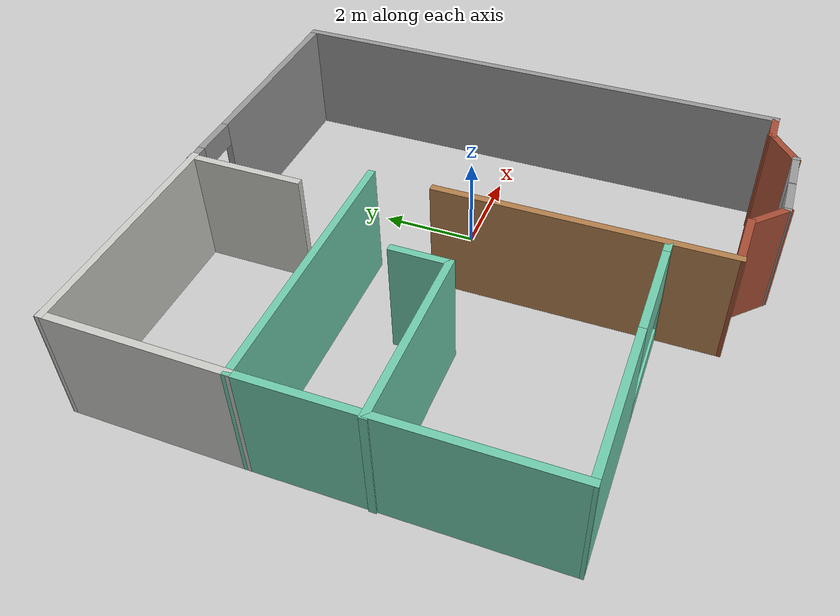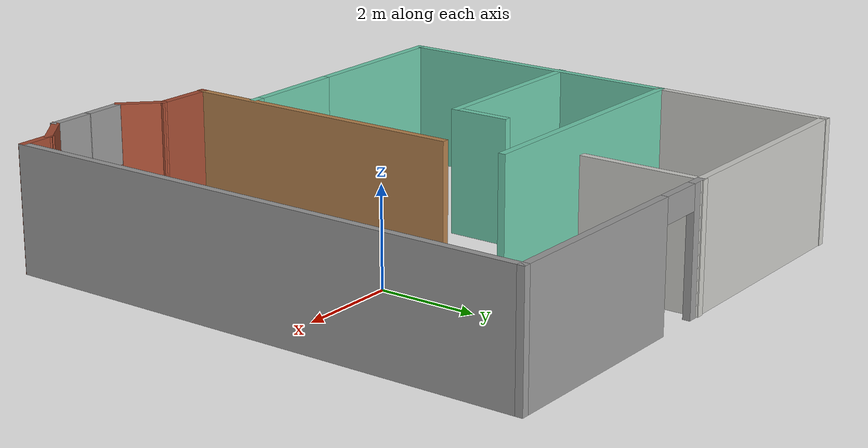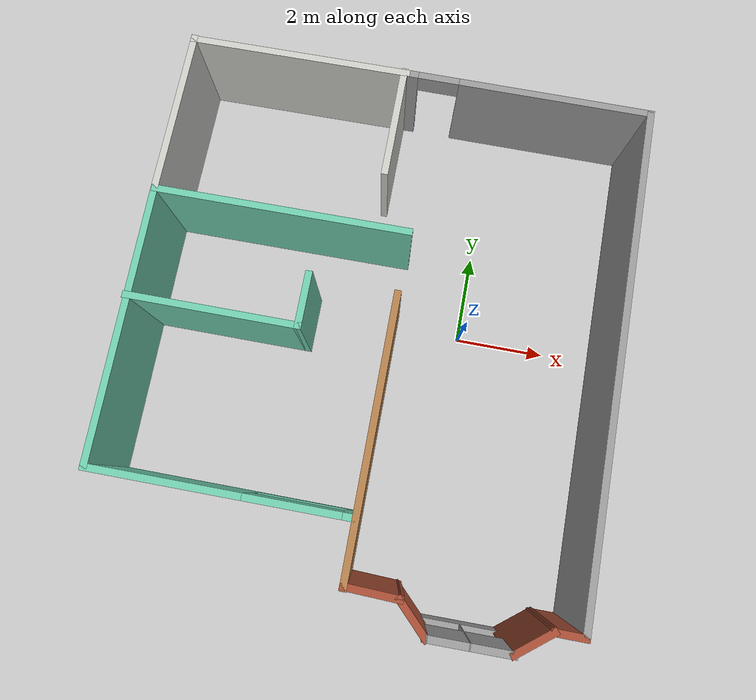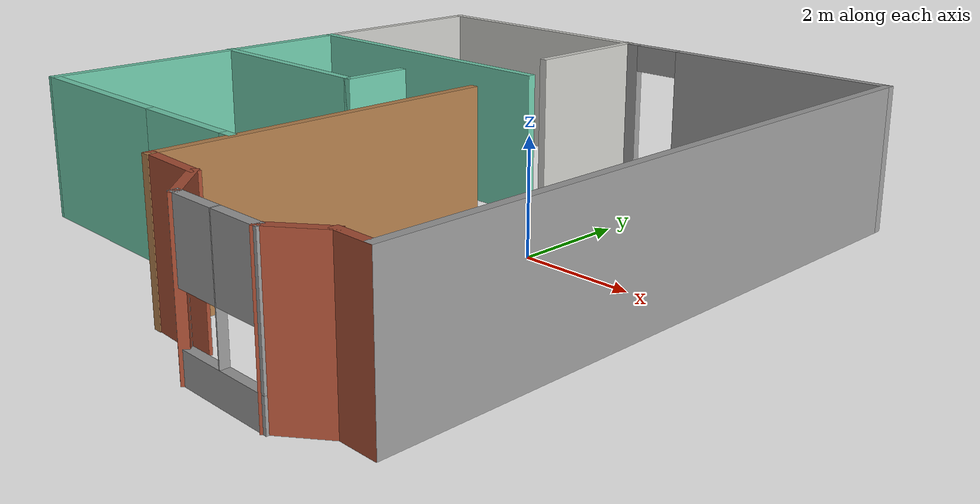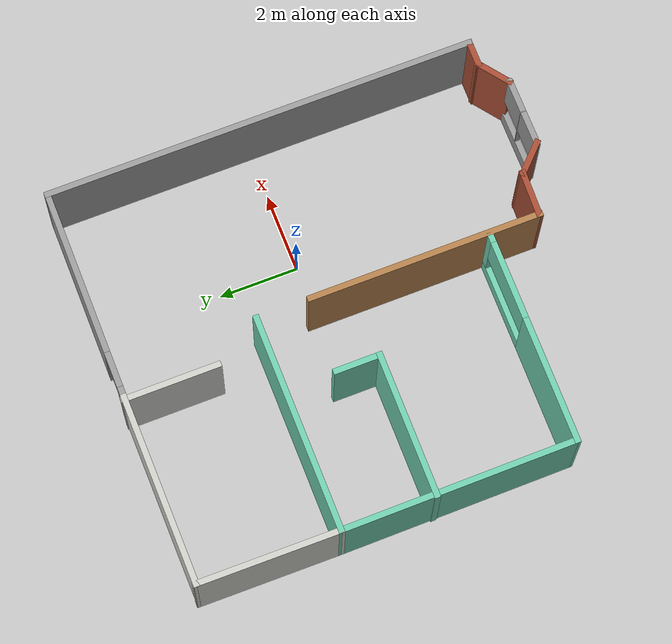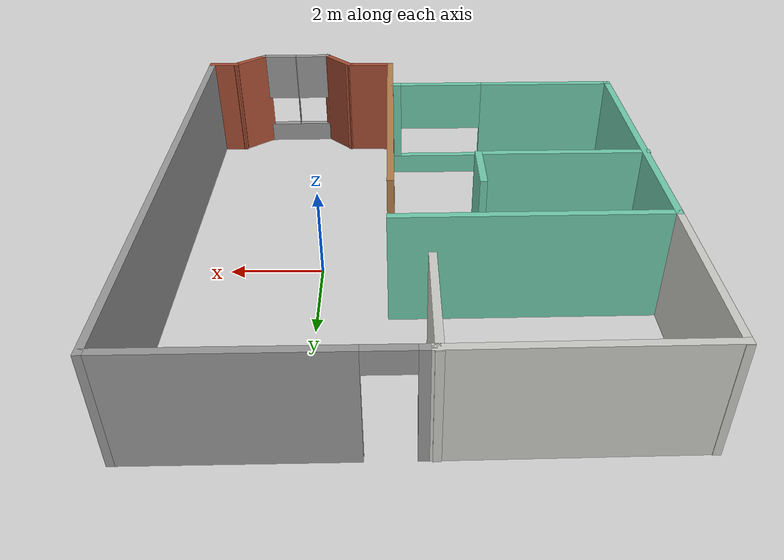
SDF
<?xml version='1.0'?>
<sdf version='1.6'>
  <model name='myWorld'>
    <pose frame=''>-1.93076 -0.557232 0 0 -0 0</pose>
    <link name='Wall_1'>
      <collision name='Wall_1_Collision'>
        <geometry>
          <box>
            <size>6 0.15 2.5</size>
          </box>
        </geometry>
        <pose frame=''>0 0 1.25 0 -0 0</pose>
      </collision>
      <visual name='Wall_1_Visual'>
        <pose frame=''>0 0 1.25 0 -0 0</pose>
        <geometry>
          <box>
            <size>6 0.15 2.5</size>
          </box>
        </geometry>
        <material>
          <script>
            <uri>file://media/materials/scripts/gazebo.material</uri>
            <name>Gazebo/Wood</name>
          </script>
          <ambient>1 1 1 1</ambient>
        </material>
        <meta>
          <layer>0</layer>
        </meta>
      </visual>
      <pose frame=''>0.408173 -2.14572 0 0 0 -1.5708</pose>
    </link>
    <link name='Wall_18'>
      <collision name='Wall_18_Collision'>
        <geometry>
          <box>
            <size>10.9886 0.15 2.5</size>
          </box>
        </geometry>
        <pose frame=''>0 0 1.25 0 -0 0</pose>
      </collision>
      <visual name='Wall_18_Visual'>
        <pose frame=''>0 0 1.25 0 -0 0</pose>
        <geometry>
          <box>
            <size>10.9886 0.15 2.5</size>
          </box>
        </geometry>
        <material>
          <script>
            <uri>file://media/materials/scripts/gazebo.material</uri>
            <name>Gazebo/Grey</name>
          </script>
          <ambient>1 1 1 1</ambient>
        </material>
        <meta>
          <layer>0</layer>
        </meta>
      </visual>
      <pose frame=''>5.07141 0.284616 0 0 -0 1.5708</pose>
    </link>
    <link name='Wall_2'>
      <collision name='Wall_2_Collision'>
        <geometry>
          <box>
            <size>1.25 0.15 2.5</size>
          </box>
        </geometry>
        <pose frame=''>0 0 1.25 0 -0 0</pose>
      </collision>
      <visual name='Wall_2_Visual'>
        <pose frame=''>0 0 1.25 0 -0 0</pose>
        <geometry>
          <box>
            <size>1.25 0.15 2.5</size>
          </box>
        </geometry>
        <material>
          <script>
            <uri>file://media/materials/scripts/gazebo.material</uri>
            <name>Gazebo/Bricks</name>
          </script>
          <ambient>1 1 1 1</ambient>
        </material>
        <meta>
          <layer>0</layer>
        </meta>
      </visual>
      <pose frame=''>0.958173 -5.07072 0 0 0 -0.031789</pose>
    </link>
    <link name='Wall_20'>
      <pose frame=''>2.39641 5.7039 0 0 -0 3.14159</pose>
      <visual name='Wall_20_Visual_0'>
        <pose frame=''>-0.620935 0 1.25 0 -0 0</pose>
        <geometry>
          <box>
            <size>4.25813 0.15 2.5</size>
          </box>
        </geometry>
        <material>
          <script>
            <uri>file://media/materials/scripts/gazebo.material</uri>
            <name>Gazebo/Grey</name>
          </script>
          <ambient>1 1 1 1</ambient>
        </material>
        <meta>
          <layer>0</layer>
        </meta>
      </visual>
      <collision name='Wall_20_Collision_0'>
        <geometry>
          <box>
            <size>4.25813 0.15 2.5</size>
          </box>
        </geometry>
        <pose frame=''>-0.620935 0 1.25 0 -0 0</pose>
      </collision>
      <visual name='Wall_20_Visual_1'>
        <pose frame=''>2.57906 0 1.25 0 -0 0</pose>
        <geometry>
          <box>
            <size>0.341869 0.15 2.5</size>
          </box>
        </geometry>
        <material>
          <script>
            <uri>file://media/materials/scripts/gazebo.material</uri>
            <name>Gazebo/Grey</name>
          </script>
          <ambient>1 1 1 1</ambient>
        </material>
        <meta>
          <layer>0</layer>
        </meta>
      </visual>
      <collision name='Wall_20_Collision_1'>
        <geometry>
          <box>
            <size>0.341869 0.15 2.5</size>
          </box>
        </geometry>
        <pose frame=''>2.57906 0 1.25 0 -0 0</pose>
      </collision>
      <visual name='Wall_20_Visual_2'>
        <pose frame=''>1.95813 0 2.25 0 -0 0</pose>
        <geometry>
          <box>
            <size>0.9 0.15 0.5</size>
          </box>
        </geometry>
        <material>
          <script>
            <uri>file://media/materials/scripts/gazebo.material</uri>
            <name>Gazebo/Grey</name>
          </script>
          <ambient>1 1 1 1</ambient>
        </material>
        <meta>
          <layer>0</layer>
        </meta>
      </visual>
      <collision name='Wall_20_Collision_2'>
        <geometry>
          <box>
            <size>0.9 0.15 0.5</size>
          </box>
        </geometry>
        <pose frame=''>1.95813 0 2.25 0 -0 0</pose>
      </collision>
    </link>
    <link name='Wall_22'>
      <collision name='Wall_22_Collision'>
        <geometry>
          <box>
            <size>4.8978 0.15 2.5</size>
          </box>
        </geometry>
        <pose frame=''>0 0 1.25 0 -0 0</pose>
      </collision>
      <visual name='Wall_22_Visual'>
        <pose frame=''>0 0 1.25 0 -0 0</pose>
        <geometry>
          <box>
            <size>4.8978 0.15 2.5</size>
          </box>
        </geometry>
        <material>
          <script>
            <uri>file://media/materials/scripts/gazebo.material</uri>
            <name>Gazebo/CeilingTiled</name>
          </script>
          <ambient>1 1 1 1</ambient>
        </material>
        <meta>
          <layer>0</layer>
        </meta>
      </visual>
      <pose frame=''>-2.6523 5.68869 0 0 0 -3.13519</pose>
    </link>
    <link name='Wall_23'>
      <collision name='Wall_23_Collision'>
        <geometry>
          <box>
            <size>3.72179 0.15 2.5</size>
          </box>
        </geometry>
        <pose frame=''>0 0 1.25 0 -0 0</pose>
      </collision>
      <visual name='Wall_23_Visual'>
        <pose frame=''>0 0 1.25 0 -0 0</pose>
        <geometry>
          <box>
            <size>3.72179 0.15 2.5</size>
          </box>
        </geometry>
        <material>
          <script>
            <uri>file://media/materials/scripts/gazebo.material</uri>
            <name>Gazebo/CeilingTiled</name>
          </script>
          <ambient>1 1 1 1</ambient>
        </material>
        <meta>
          <layer>0</layer>
        </meta>
      </visual>
      <pose frame=''>-5.03927 3.90281 0 0 0 -1.57822</pose>
    </link>
    <link name='Wall_24'>
      <collision name='Wall_24_Collision'>
        <geometry>
          <box>
            <size>5.59881 0.15 2.5</size>
          </box>
        </geometry>
        <pose frame=''>0 0 1.25 0 -0 0</pose>
      </collision>
      <visual name='Wall_24_Visual'>
        <pose frame=''>0 0 1.25 0 -0 0</pose>
        <geometry>
          <box>
            <size>5.59881 0.15 2.5</size>
          </box>
        </geometry>
        <material>
          <script>
            <uri>file://media/materials/scripts/gazebo.material</uri>
            <name>Gazebo/Grey</name>
          </script>
          <ambient>0.435294 0.796078 0.67451 1</ambient>
        </material>
        <meta>
          <layer>0</layer>
        </meta>
      </visual>
      <pose frame=''>-2.31491 2.12703 0 0 -0 0.003711</pose>
    </link>
    <link name='Wall_26'>
      <collision name='Wall_26_Collision'>
        <geometry>
          <box>
            <size>2.5 0.15 2.5</size>
          </box>
        </geometry>
        <pose frame=''>0 0 1.25 0 -0 0</pose>
      </collision>
      <visual name='Wall_26_Visual'>
        <pose frame=''>0 0 1.25 0 -0 0</pose>
        <geometry>
          <box>
            <size>2.5 0.15 2.5</size>
          </box>
        </geometry>
        <material>
          <script>
            <uri>file://media/materials/scripts/gazebo.material</uri>
            <name>Gazebo/CeilingTiled</name>
          </script>
          <ambient>1 1 1 1</ambient>
        </material>
        <meta>
          <layer>0</layer>
        </meta>
      </visual>
      <pose frame=''>-0.330965 4.55103 0 0 -0 1.5708</pose>
    </link>
    <link name='Wall_28'>
      <collision name='Wall_28_Collision'>
        <geometry>
          <box>
            <size>6.04346 0.15 2.5</size>
          </box>
        </geometry>
        <pose frame=''>0 0 1.25 0 -0 0</pose>
      </collision>
      <visual name='Wall_28_Visual'>
        <pose frame=''>0 0 1.25 0 -0 0</pose>
        <geometry>
          <box>
            <size>6.04346 0.15 2.5</size>
          </box>
        </geometry>
        <material>
          <script>
            <uri>file://media/materials/scripts/gazebo.material</uri>
            <name>Gazebo/Grey</name>
          </script>
          <ambient>0.435294 0.796078 0.67451 1</ambient>
        </material>
        <meta>
          <layer>0</layer>
        </meta>
      </visual>
      <pose frame=''>-5.03927 -0.829799 0 0 0 -1.5663</pose>
    </link>
    <link name='Wall_29'>
      <pose frame=''>-2.35101 -3.77652 0 0 -0 0</pose>
      <visual name='Wall_29_Visual_0'>
        <pose frame=''>-1.12879 0 1.25 0 -0 0</pose>
        <geometry>
          <box>
            <size>3.24243 0.15 2.5</size>
          </box>
        </geometry>
        <material>
          <script>
            <uri>file://media/materials/scripts/gazebo.material</uri>
            <name>Gazebo/Grey</name>
          </script>
          <ambient>0.435294 0.796078 0.67451 1</ambient>
        </material>
        <meta>
          <layer>0</layer>
        </meta>
      </visual>
      <collision name='Wall_29_Collision_0'>
        <geometry>
          <box>
            <size>3.24243 0.15 2.5</size>
          </box>
        </geometry>
        <pose frame=''>-1.12879 0 1.25 0 -0 0</pose>
      </collision>
      <visual name='Wall_29_Visual_1'>
        <pose frame=''>1.62121 0 0.25 0 -0 0</pose>
        <geometry>
          <box>
            <size>2.25757 0.15 0.5</size>
          </box>
        </geometry>
        <material>
          <script>
            <uri>file://media/materials/scripts/gazebo.material</uri>
            <name>Gazebo/Grey</name>
          </script>
          <ambient>0.435294 0.796078 0.67451 1</ambient>
        </material>
        <meta>
          <layer>0</layer>
        </meta>
      </visual>
      <collision name='Wall_29_Collision_1'>
        <geometry>
          <box>
            <size>2.25757 0.15 0.5</size>
          </box>
        </geometry>
        <pose frame=''>1.62121 0 0.25 0 -0 0</pose>
      </collision>
      <visual name='Wall_29_Visual_2'>
        <pose frame=''>2.62121 0 1.5 0 -0 0</pose>
        <geometry>
          <box>
            <size>0.257574 0.15 2</size>
          </box>
        </geometry>
        <material>
          <script>
            <uri>file://media/materials/scripts/gazebo.material</uri>
            <name>Gazebo/Grey</name>
          </script>
          <ambient>0.435294 0.796078 0.67451 1</ambient>
        </material>
        <meta>
          <layer>0</layer>
        </meta>
      </visual>
      <collision name='Wall_29_Collision_2'>
        <geometry>
          <box>
            <size>0.257574 0.15 2</size>
          </box>
        </geometry>
        <pose frame=''>2.62121 0 1.5 0 -0 0</pose>
      </collision>
      <visual name='Wall_29_Visual_3'>
        <pose frame=''>1.49243 0 1.9 0 -0 0</pose>
        <geometry>
          <box>
            <size>2 0.15 1.2</size>
          </box>
        </geometry>
        <material>
          <script>
            <uri>file://media/materials/scripts/gazebo.material</uri>
            <name>Gazebo/Grey</name>
          </script>
          <ambient>0.435294 0.796078 0.67451 1</ambient>
        </material>
        <meta>
          <layer>0</layer>
        </meta>
      </visual>
      <collision name='Wall_29_Collision_3'>
        <geometry>
          <box>
            <size>2 0.15 1.2</size>
          </box>
        </geometry>
        <pose frame=''>1.49243 0 1.9 0 -0 0</pose>
      </collision>
    </link>
    <link name='Wall_3'>
      <collision name='Wall_3_Collision'>
        <geometry>
          <box>
            <size>1 0.15 2.5</size>
          </box>
        </geometry>
        <pose frame=''>0 0 1.25 0 -0 0</pose>
      </collision>
      <visual name='Wall_3_Visual'>
        <pose frame=''>0 0 1.25 0 -0 0</pose>
        <geometry>
          <box>
            <size>1 0.15 2.5</size>
          </box>
        </geometry>
        <material>
          <script>
            <uri>file://media/materials/scripts/gazebo.material</uri>
            <name>Gazebo/Bricks</name>
          </script>
          <ambient>1 1 1 1</ambient>
        </material>
        <meta>
          <layer>0</layer>
        </meta>
      </visual>
      <pose frame=''>1.80298 -5.39445 0 0 0 -0.785398</pose>
    </link>
    <link name='Wall_31'>
      <collision name='Wall_31_Collision'>
        <geometry>
          <box>
            <size>3.75 0.15 2.5</size>
          </box>
        </geometry>
        <pose frame=''>0 0 1.25 0 -0 0</pose>
      </collision>
      <visual name='Wall_31_Visual'>
        <pose frame=''>0 0 1.25 0 -0 0</pose>
        <geometry>
          <box>
            <size>3.75 0.15 2.5</size>
          </box>
        </geometry>
        <material>
          <script>
            <uri>file://media/materials/scripts/gazebo.material</uri>
            <name>Gazebo/Grey</name>
          </script>
          <ambient>0.435294 0.796078 0.67451 1</ambient>
        </material>
        <meta>
          <layer>0</layer>
        </meta>
      </visual>
      <pose frame=''>-3.27141 -0.245758 0 0 -0 0</pose>
    </link>
    <link name='Wall_32'>
      <collision name='Wall_32_Collision'>
        <geometry>
          <box>
            <size>1.25 0.15 2.5</size>
          </box>
        </geometry>
        <pose frame=''>0 0 1.25 0 -0 0</pose>
      </collision>
      <visual name='Wall_32_Visual'>
        <pose frame=''>0 0 1.25 0 -0 0</pose>
        <geometry>
          <box>
            <size>1.25 0.15 2.5</size>
          </box>
        </geometry>
        <material>
          <script>
            <uri>file://media/materials/scripts/gazebo.material</uri>
            <name>Gazebo/Grey</name>
          </script>
          <ambient>0.435294 0.796078 0.67451 1</ambient>
        </material>
        <meta>
          <layer>0</layer>
        </meta>
      </visual>
      <pose frame=''>-1.47141 0.304242 0 0 -0 1.5708</pose>
    </link>
    <link name='Wall_4'>
      <pose frame=''>2.9426 -5.68332 0 0 -0 0.00712</pose>
      <visual name='Wall_4_Visual_0'>
        <pose frame=''>-0.858752 0 1.25 0 -0 0</pose>
        <geometry>
          <box>
            <size>0.099322 0.15 2.5</size>
          </box>
        </geometry>
        <material>
          <script>
            <uri>file://media/materials/scripts/gazebo.material</uri>
            <name>Gazebo/Grey</name>
          </script>
          <ambient>1 1 1 1</ambient>
        </material>
        <meta>
          <layer>0</layer>
        </meta>
      </visual>
      <collision name='Wall_4_Collision_0'>
        <geometry>
          <box>
            <size>0.099322 0.15 2.5</size>
          </box>
        </geometry>
        <pose frame=''>-0.858752 0 1.25 0 -0 0</pose>
      </collision>
      <visual name='Wall_4_Visual_1'>
        <pose frame=''>0.049661 0 0.25 0 -0 0</pose>
        <geometry>
          <box>
            <size>1.7175 0.15 0.5</size>
          </box>
        </geometry>
        <material>
          <script>
            <uri>file://media/materials/scripts/gazebo.material</uri>
            <name>Gazebo/Grey</name>
          </script>
          <ambient>1 1 1 1</ambient>
        </material>
        <meta>
          <layer>0</layer>
        </meta>
      </visual>
      <collision name='Wall_4_Collision_1'>
        <geometry>
          <box>
            <size>1.7175 0.15 0.5</size>
          </box>
        </geometry>
        <pose frame=''>0.049661 0 0.25 0 -0 0</pose>
      </collision>
      <visual name='Wall_4_Visual_2'>
        <pose frame=''>0.000934 0 1.5 0 -0 0</pose>
        <geometry>
          <box>
            <size>0.02005 0.15 2</size>
          </box>
        </geometry>
        <material>
          <script>
            <uri>file://media/materials/scripts/gazebo.material</uri>
            <name>Gazebo/Grey</name>
          </script>
          <ambient>1 1 1 1</ambient>
        </material>
        <meta>
          <layer>0</layer>
        </meta>
      </visual>
      <collision name='Wall_4_Collision_2'>
        <geometry>
          <box>
            <size>0.02005 0.15 2</size>
          </box>
        </geometry>
        <pose frame=''>0.000934 0 1.5 0 -0 0</pose>
      </collision>
      <visual name='Wall_4_Visual_3'>
        <pose frame=''>0.859686 0 1.5 0 -0 0</pose>
        <geometry>
          <box>
            <size>0.097453 0.15 2</size>
          </box>
        </geometry>
        <material>
          <script>
            <uri>file://media/materials/scripts/gazebo.material</uri>
            <name>Gazebo/Grey</name>
          </script>
          <ambient>1 1 1 1</ambient>
        </material>
        <meta>
          <layer>0</layer>
        </meta>
      </visual>
      <collision name='Wall_4_Collision_3'>
        <geometry>
          <box>
            <size>0.097453 0.15 2</size>
          </box>
        </geometry>
        <pose frame=''>0.859686 0 1.5 0 -0 0</pose>
      </collision>
      <visual name='Wall_4_Visual_4'>
        <pose frame=''>-0.409091 0 1.9 0 -0 0</pose>
        <geometry>
          <box>
            <size>0.8 0.15 1.2</size>
          </box>
        </geometry>
        <material>
          <script>
            <uri>file://media/materials/scripts/gazebo.material</uri>
            <name>Gazebo/Grey</name>
          </script>
          <ambient>1 1 1 1</ambient>
        </material>
        <meta>
          <layer>0</layer>
        </meta>
      </visual>
      <collision name='Wall_4_Collision_4'>
        <geometry>
          <box>
            <size>0.8 0.15 1.2</size>
          </box>
        </geometry>
        <pose frame=''>-0.409091 0 1.9 0 -0 0</pose>
      </collision>
      <visual name='Wall_4_Visual_5'>
        <pose frame=''>0.41096 0 1.9 0 -0 0</pose>
        <geometry>
          <box>
            <size>0.8 0.15 1.2</size>
          </box>
        </geometry>
        <material>
          <script>
            <uri>file://media/materials/scripts/gazebo.material</uri>
            <name>Gazebo/Grey</name>
          </script>
          <ambient>1 1 1 1</ambient>
        </material>
        <meta>
          <layer>0</layer>
        </meta>
      </visual>
      <collision name='Wall_4_Collision_5'>
        <geometry>
          <box>
            <size>0.8 0.15 1.2</size>
          </box>
        </geometry>
        <pose frame=''>0.41096 0 1.9 0 -0 0</pose>
      </collision>
    </link>
    <link name='Wall_5'>
      <collision name='Wall_5_Collision'>
        <geometry>
          <box>
            <size>1.02513 0.15 2.5</size>
          </box>
        </geometry>
        <pose frame=''>0 0 1.25 0 -0 0</pose>
      </collision>
      <visual name='Wall_5_Visual'>
        <pose frame=''>0 0 1.25 0 -0 0</pose>
        <geometry>
          <box>
            <size>1.02513 0.15 2.5</size>
          </box>
        </geometry>
        <material>
          <script>
            <uri>file://media/materials/scripts/gazebo.material</uri>
            <name>Gazebo/Bricks</name>
          </script>
          <ambient>1 1 1 1</ambient>
        </material>
        <meta>
          <layer>0</layer>
        </meta>
      </visual>
      <pose frame=''>4.1237 -5.40602 0 0 -0 0.652393</pose>
    </link>
    <link name='Wall_6'>
      <collision name='Wall_6_Collision'>
        <geometry>
          <box>
            <size>0.75 0.15 2.5</size>
          </box>
        </geometry>
        <pose frame=''>0 0 1.25 0 -0 0</pose>
      </collision>
      <visual name='Wall_6_Visual'>
        <pose frame=''>0 0 1.25 0 -0 0</pose>
        <geometry>
          <box>
            <size>0.75 0.15 2.5</size>
          </box>
        </geometry>
        <material>
          <script>
            <uri>file://media/materials/scripts/gazebo.material</uri>
            <name>Gazebo/Bricks</name>
          </script>
          <ambient>1 1 1 1</ambient>
        </material>
        <meta>
          <layer>0</layer>
        </meta>
      </visual>
      <pose frame=''>4.7714 -5.14038 0 0 -0 0</pose>
    </link>
    <static>1</static>
  </model>
</sdf>
